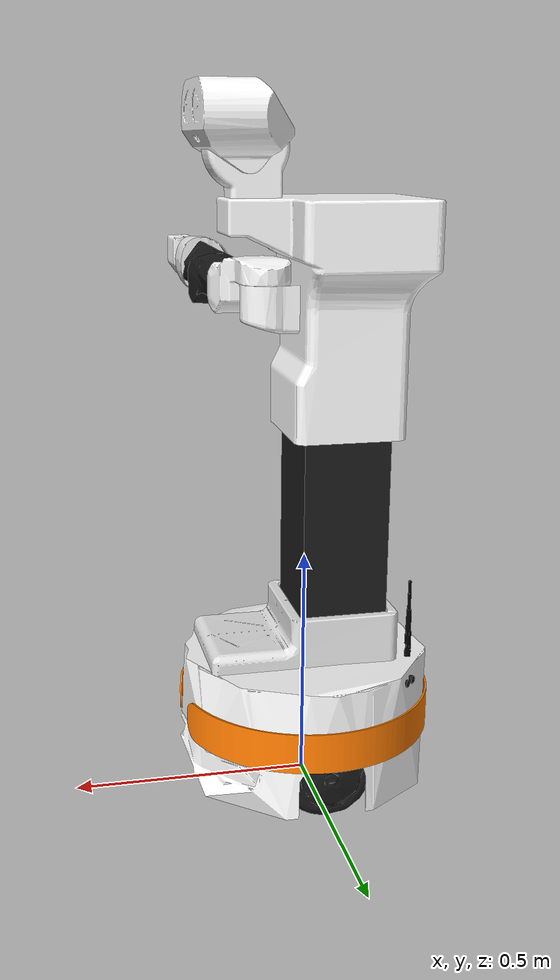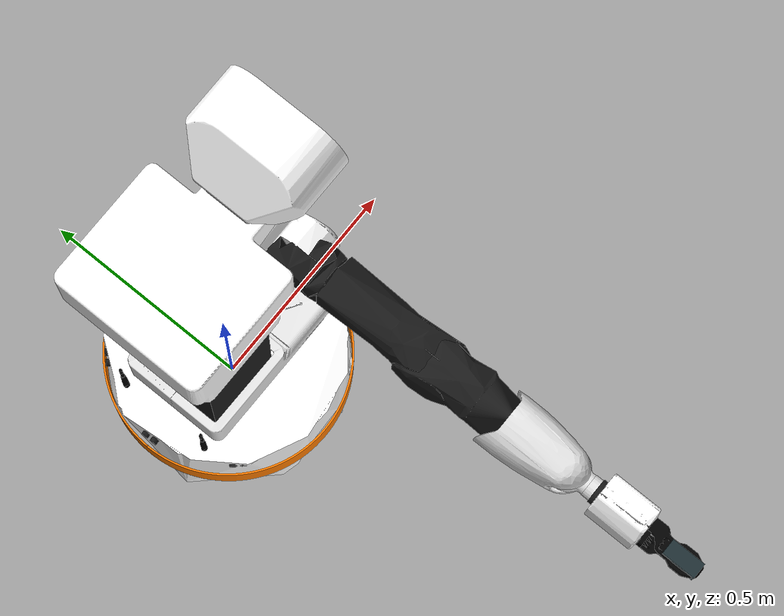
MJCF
<mujoco model="tiago">
  <compiler angle="radian" meshdir="assets" autolimits="true" fusestatic="false" />
  <option integrator="implicitfast" timestep="0.002" iterations="30" tolerance="1e-8" />
  <asset>
    <material name="black" rgba="0 0 0 1" />
    <material name="gray10" rgba="0.1 0.1 0.1 1" />
    <material name="gray70" rgba="0.7 0.7 0.7 1" />
    <material name="mercury" rgba="0.9 0.9 0.9 1" />
    <material name="white" rgba="1 1 1 1" />
    <material name="orange" rgba="1 0.487 0 1" />
    <mesh file="sensors/sick_tim551.stl" />
    <mesh file="sensors/srf05.stl" />
    <mesh file="base/base.stl" />
    <mesh file="base/base_ring.stl" />
    <mesh file="objects/antenna.stl" />
    <mesh file="wheels/wheel.stl" />
    <mesh file="wheels/caster_1.stl" />
    <mesh file="wheels/caster_2.stl" />
    <mesh file="torso/torso_fix.stl" />
    <mesh file="torso/torso_lift_with_arm.stl" />
    <mesh file="head/head_1.stl" />
    <mesh file="head/head_2.stl" />
    <mesh file="arm/arm_1.stl" />
    <mesh file="arm/arm_2.stl" />
    <mesh file="arm/arm_3.stl" />
    <mesh file="arm/arm_4.stl" />
    <mesh file="arm/arm_5-wrist-2017.stl" />
    <mesh file="arm/arm_6-wrist-2017.stl" />
    <mesh file="gripper/gripper_link.stl" />
    <mesh name="gripper_right_finger_link" file="gripper/gripper_finger_link.stl" scale="-1 -1 1" />
    <mesh name="gripper_left_finger_link" file="gripper/gripper_finger_link.stl" />
  </asset>
  <default>
    <geom contype="0" conaffinity="0" group="2" type="mesh" mass="0" />
    <joint axis="0 0 1" />
    <default class="arm">
      <geom contype="0" conaffinity="0" />
      <joint frictionloss="1" />
    </default>
    <default class="wheel">
      <geom condim="6" />
    </default>
  </default>
  <worldbody>
    <body name="base_link">
      <joint name="reference" type="free" />
      <geom pos="0 0 0.0985" material="white" mesh="base" />
      <geom pos="0.202 0 0.0945" material="gray10" mesh="sick_tim551" />
      <geom pos="-0.183 0.183 0.2715" quat="0.382683 0 0 0.92388" material="gray10" mesh="srf05" />
      <geom pos="-0.259 0 0.2715" quat="0 0 0 1" material="gray10" mesh="srf05" />
      <geom pos="-0.183 -0.183 0.2715" quat="-0.382683 0 0 0.92388" material="gray10" mesh="srf05" />
      <geom pos="-0.201 0.1062 0.2935" material="black" mesh="antenna" />
      <geom pos="-0.201 -0.1062 0.2935" material="black" mesh="antenna" />
      <geom pos="-0.062 0 0.2915" material="mercury" mesh="torso_fix" />
      <geom size="0.09 0.1 0.275" pos="-0.062 0 0.5685" type="box" material="gray10" />
      <geom pos="0 0 0.13" material="orange" mesh="base_ring" />
      <inertial pos="-0.01 -0.002 0.131" mass="47.112" diaginertia="2.074 2.245 0.897" />
      <body name="wheel_right_link" pos="0 -0.2022 0.0985" quat="1 -1 0 0">
        <inertial pos="0.0 0.0 0.0" mass="4.4" diaginertia="0.014 0.014 0.027" />
        <joint name="wheel_right_joint" actuatorfrcrange="-100 100" />
        <geom material="gray10" mesh="wheel" />
        <geom name="wheel_right_collision" type="cylinder" size="0.0985 0.022" group="3" contype="2" conaffinity="1" friction="1.0 0.002 0.0001" condim="6" mass="0" />
      </body>
      <body name="wheel_left_link" pos="0 0.2022 0.0985" quat="1 -1 0 0">
        <inertial pos="0.0 0.0 0.0" mass="4.4" diaginertia="0.014 0.014 0.027" />
        <joint name="wheel_left_joint" actuatorfrcrange="-100 100" />
        <geom quat="0 -1 0 0" material="gray10" mesh="wheel" />
        <geom name="wheel_left_collision" type="cylinder" size="0.0985 0.022" group="3" contype="2" conaffinity="1" friction="1.0 0.002 0.0001" condim="6" mass="0" />
      </body>
      <body name="torso_lift_link" pos="-0.062 0 1.2385">
        <inertial pos="0.031711 -0.001004 -0.187315" mass="6.281737" diaginertia="0.230972 0.235034 0.080705" />
        <geom material="white" mesh="torso_lift_with_arm" />
        <body name="head_1_link" pos="0.182 0 0">
          <inertial pos="-0.00508 0.00237 0.07229" mass="0.6222" diaginertia="0.00140223 0.00121968 0.000861083" />
          <geom material="white" mesh="head_1" />
          <body name="head_2_link" pos="0.005 0 0.098" quat="1 1 0 0">
            <inertial pos="0.0558274 0.0609987 1.58542e-05" mass="0.88693" diaginertia="0.00554181 0.00436261 0.00347586" />
            <geom material="white" mesh="head_2" />
            <camera name="head_camera" pos="0.0908 0.08 0.0" mode="fixed" euler="0 -1.57 0" fovy="45.5" resolution="640 480" />
          </body>
        </body>
        <body name="arm_1_link" pos="0.15505 0.014 -0.151" quat="1 0 0 -1" childclass="arm">
          <inertial pos="0.061191 -0.022397 -0.012835" mass="1.56343" diaginertia="0.00510233 0.00510233 0.00510233" />
          <joint name="arm_1_joint" range="0 2.74889" actuatorfrcrange="-43 43" damping="10" />
          <geom material="white" mesh="arm_1" />
          <body name="arm_2_link" pos="0.125 0.0195 -0.031" quat="1 1 0 0">
            <inertial pos="0.030432 0.000229 -0.005942" mass="1.8004" diaginertia="0.00437229 0.00432701 0.0017837" />
            <joint name="arm_2_joint" range="-1.5708 1.09083" actuatorfrcrange="-43 43" damping="10" />
            <geom material="gray10" mesh="arm_2" />
            <body name="arm_3_link" pos="0.0895 0 -0.0015" quat="0.5 -0.5 -0.5 0.5">
              <inertial pos="0.007418 -0.004361 -0.134194" mass="1.8" diaginertia="0.0200771 0.0196154 0.00264853" />
              <joint name="arm_3_joint" range="-3.53429 1.5708" actuatorfrcrange="-26 26" damping="10" />
              <geom material="gray10" mesh="arm_3" />
              <body name="arm_4_link" pos="-0.02 -0.027 -0.222" quat="0.5 -0.5 -0.5 -0.5">
                <inertial pos="-0.095658 0.014666 0.018133" mass="1.4327" diaginertia="0.002040 0.008424 0.008686" />
                <joint name="arm_4_joint" range="-0.392699 2.35619" actuatorfrcrange="-26 26" damping="10" />
                <geom material="gray10" mesh="arm_4" />
                <body name="arm_5_link" pos="-0.162 0.02 0.027" quat="1 0 -1 0">
                  <inertial pos="0.001078 -0.000151 -0.077173" mass="0.935914" diaginertia="0.00103619 0.000794527 0.000439824" />
                  <joint name="arm_5_joint" range="-2.0944 2.0944" actuatorfrcrange="-3 3" damping="1" />
                  <geom material="mercury" mesh="arm_5-wrist-2017" />
                  <body name="arm_6_link" pos="0 0 0.15" quat="0.5 -0.5 -0.5 -0.5">
                    <inertial pos="-0.000153 -0.003122 0.000183" mass="0.302758" diaginertia="3.85419e-05 3.33205e-05 3.29226e-05" />
                    <joint name="arm_6_joint" range="-1.41372 1.41372" actuatorfrcrange="-6.6 6.6" damping="1" />
                    <geom material="mercury" mesh="arm_6-wrist-2017" />
                    <body name="arm_7_link" quat="0.5 0.5 0.5 0.5">
                      <inertial pos="-0.000173894 0.000176395 0.0817355" mass="1.00276" diaginertia="0.0025841 0.0022568 0.000746434" />
                      <joint name="arm_7_joint" range="-2.0944 2.0944" actuatorfrcrange="-6.6 6.6" damping="1" />
                      <geom size="0.005 0.0025" pos="0 0 0.047" quat="-1 0 0 1" type="cylinder" material="mercury" />
                      <geom size="0.0225 0.00785" pos="0 0 0.05385" quat="-1 0 0 0" type="cylinder" material="mercury" />
                      <geom size="0.025 0.004875" pos="0 0 0.066575" quat="-1 0 0 1" type="cylinder" material="gray10" />
                      <geom pos="0 0 0.076575" quat="0 -1 1 0" material="white" mesh="gripper_link" />
                      <body name="gripper_right_finger_link" pos="0 0 0.076575" quat="0 -1 1 0">
                        <inertial pos="0.008658 0.019724 -0.149125" mass="0.107001" diaginertia="0.000242 0.000236 0.000018" />
                        <joint name="gripper_right_finger_joint" axis="1 0 0" type="slide" range="0 0.045" damping="2" frictionloss="0.1" />
                        <geom quat="4.63268e-05 0 0 1" material="black" mesh="gripper_right_finger_link" />
                        <geom name="gripper_right_finger_link_pad" type="box" size="0.008 0.016 0.035" pos="0.008 0 -0.180" group="1" rgba="0.12 0.18 0.2 1" contype="2" conaffinity="1" friction="1.5 0.01 0.001" condim="4" solref="0.006 1" solimp="0.95 0.99 0.001" mass="0" />
                      </body>
                      <body name="gripper_left_finger_link" pos="0 0 0.076575" quat="0 -1 1 0">
                        <inertial pos="-0.008658 -0.019724 -0.149125" mass="0.107001" diaginertia="0.000242 0.000236 0.000018" />
                        <joint name="gripper_left_finger_joint" axis="-1 0 0" type="slide" range="0 0.045" damping="2" frictionloss="0.1" />
                        <geom quat="4.63268e-05 0 0 1" material="black" mesh="gripper_left_finger_link" />
                        <geom name="gripper_left_finger_link_pad" type="box" size="0.008 0.016 0.035" pos="-0.008 0 -0.180" group="1" rgba="0.12 0.18 0.2 1" contype="2" conaffinity="1" friction="1.5 0.01 0.001" condim="4" solref="0.006 1" solimp="0.95 0.99 0.001" mass="0" />
                      </body>
                      <geom type="capsule" size="0.035" fromto="0 0 0 0 0 0.076575" group="3" contype="2" conaffinity="1" mass="0" />
                      <site name="grasp_site" pos="0 0 0.256575" size="0.008" group="5" />
                    </body>
                    <geom type="capsule" size="0.035" fromto="0 0 0 0 0 0.06" group="3" contype="2" conaffinity="1" mass="0" />
                  </body>
                  <geom type="capsule" size="0.035" fromto="0 0 0 0 0 0.15" group="3" contype="2" conaffinity="1" mass="0" />
                </body>
                <geom type="capsule" size="0.035" fromto="0 0 0 -0.162 0.02 0.027" group="3" contype="2" conaffinity="1" mass="0" />
              </body>
              <geom type="capsule" size="0.035" fromto="0 0 0 -0.02 -0.027 -0.222" group="3" contype="2" conaffinity="1" mass="0" />
            </body>
            <geom type="capsule" size="0.035" fromto="0 0 0 0.0895 0 -0.0015" group="3" contype="2" conaffinity="1" mass="0" />
          </body>
          <geom type="capsule" size="0.035" fromto="0 0 0 0.125 0.0195 -0.031" group="3" contype="2" conaffinity="1" mass="0" />
        </body>
      </body>
      <geom type="sphere" size="0.025" pos="0.2 0.15 0.025" group="3" contype="2" conaffinity="1" friction="0.002 0.001 0.0001" priority="1" mass="0" />
      <geom type="sphere" size="0.025" pos="0.2 -0.15 0.025" group="3" contype="2" conaffinity="1" friction="0.002 0.001 0.0001" priority="1" mass="0" />
      <geom type="sphere" size="0.025" pos="-0.2 0.15 0.025" group="3" contype="2" conaffinity="1" friction="0.002 0.001 0.0001" priority="1" mass="0" />
      <geom type="sphere" size="0.025" pos="-0.2 -0.15 0.025" group="3" contype="2" conaffinity="1" friction="0.002 0.001 0.0001" priority="1" mass="0" />
      <geom name="base_collision" type="cylinder" size="0.27 0.12" pos="0 0 0.19" group="3" contype="2" conaffinity="1" mass="0" />
    </body>
  </worldbody>
  <contact>
    <exclude body1="arm_2_link" body2="torso_lift_link" />
    <exclude body1="arm_3_link" body2="torso_lift_link" />
    <exclude body1="gripper_right_finger_link" body2="gripper_left_finger_link" />
  </contact>
  <actuator>
    <position name="arm_1" joint="arm_1_joint" kp="1500" kv="70" forcerange="-43 43" />
    <position name="arm_2" joint="arm_2_joint" kp="1500" kv="70" forcerange="-43 43" />
    <position name="arm_3" joint="arm_3_joint" kp="1500" kv="70" forcerange="-26 26" />
    <position name="arm_4" joint="arm_4_joint" kp="1500" kv="70" forcerange="-26 26" />
    <position name="arm_5" joint="arm_5_joint" kp="400" kv="15" forcerange="-6.6 6.6" />
    <position name="arm_6" joint="arm_6_joint" kp="400" kv="15" forcerange="-6.6 6.6" />
    <position name="arm_7" joint="arm_7_joint" kp="400" kv="15" forcerange="-6.6 6.6" />
    <position name="finger_left" joint="gripper_left_finger_joint" kp="700" kv="8" ctrlrange="0 0.045" forcerange="-12 12" />
    <velocity name="wheel_left" joint="wheel_left_joint" kv="15" ctrlrange="-8 8" forcerange="-35 35" />
    <position name="finger_right" joint="gripper_right_finger_joint" kp="700" kv="8" ctrlrange="0 0.045" forcerange="-12 12" />
    <velocity name="wheel_right" joint="wheel_right_joint" kv="15" ctrlrange="-8 8" forcerange="-35 35" />
  </actuator>
</mujoco>
